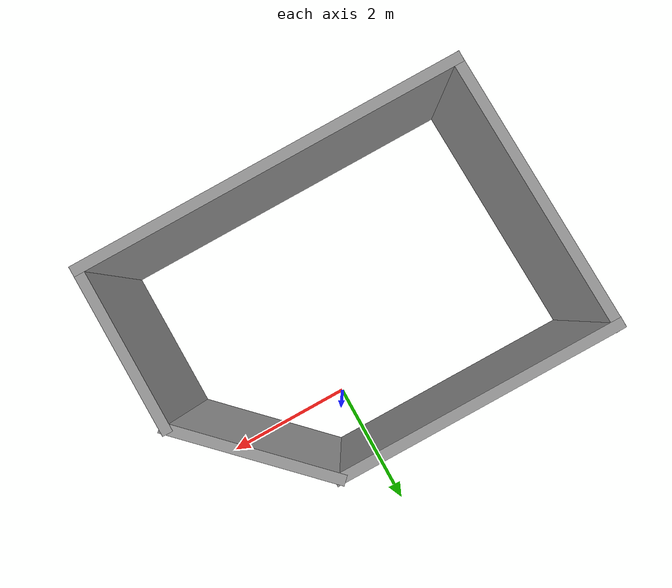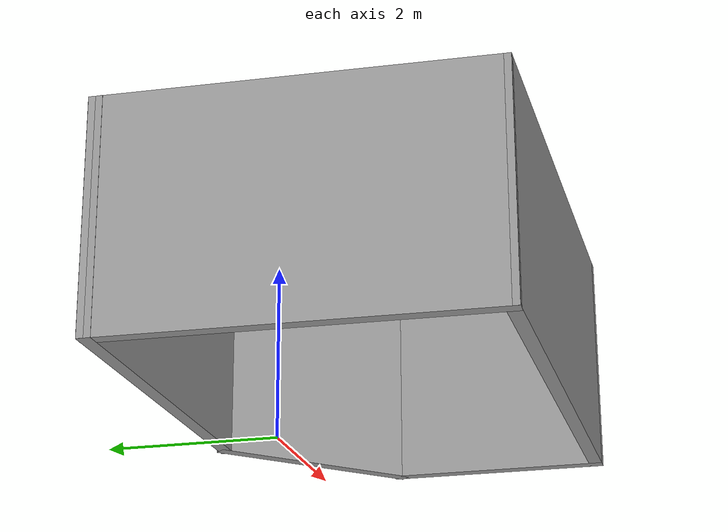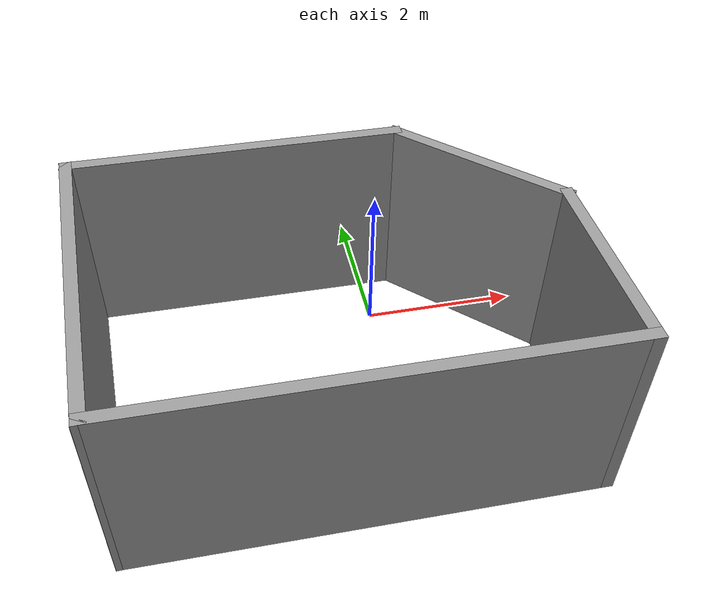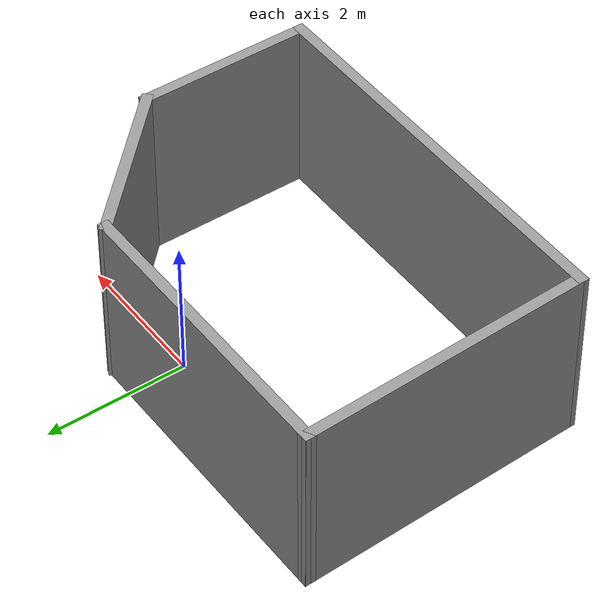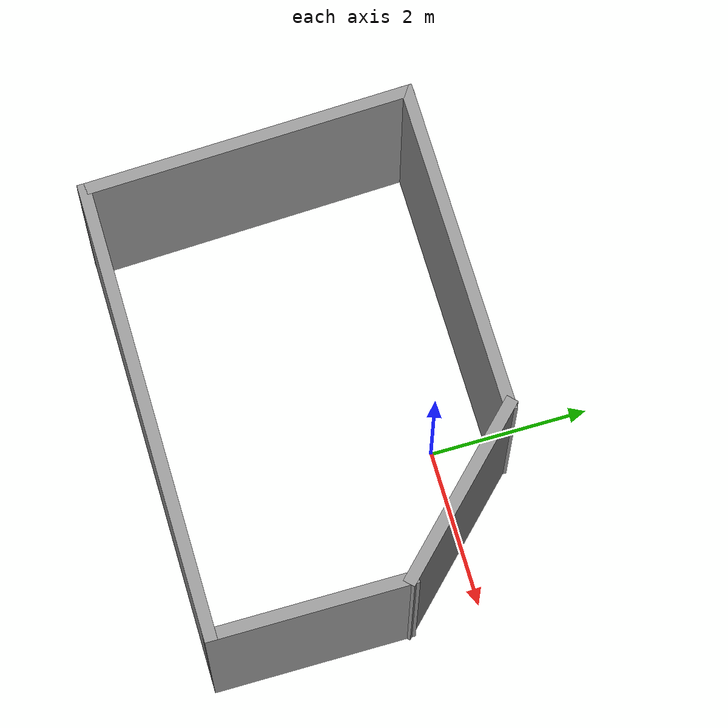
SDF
<?xml version='1.0'?>
<sdf version='1.7'>
  <model name='simple_room_1'>
    <pose>-0.786797 -1.2501 0 0 -0 0</pose>
    <link name='Wall_0'>
      <collision name='Wall_0_Collision'>
        <geometry>
          <box>
            <size>5.75 0.15 2.5</size>
          </box>
        </geometry>
        <pose>0 0 1.25 0 -0 0</pose>
      </collision>
      <visual name='Wall_0_Visual'>
        <pose>0 0 1.25 0 -0 0</pose>
        <geometry>
          <box>
            <size>5.75 0.15 2.5</size>
          </box>
        </geometry>
        <material>
          <script>
            <uri>file://media/materials/scripts/gazebo.material</uri>
            <name>Gazebo/Grey</name>
          </script>
          <ambient>1 1 1 1</ambient>
        </material>
        <meta>
          <layer>0</layer>
        </meta>
      </visual>
      <pose>0.066797 -2.0199 0 0 -0 0</pose>
    </link>
    <link name='Wall_1'>
      <collision name='Wall_1_Collision'>
        <geometry>
          <box>
            <size>2.5 0.15 2.5</size>
          </box>
        </geometry>
        <pose>0 0 1.25 0 -0 0</pose>
      </collision>
      <visual name='Wall_1_Visual'>
        <pose>0 0 1.25 0 -0 0</pose>
        <geometry>
          <box>
            <size>2.5 0.15 2.5</size>
          </box>
        </geometry>
        <material>
          <script>
            <uri>file://media/materials/scripts/gazebo.material</uri>
            <name>Gazebo/Grey</name>
          </script>
          <ambient>1 1 1 1</ambient>
        </material>
        <meta>
          <layer>0</layer>
        </meta>
      </visual>
      <pose>2.8668 -0.844904 0 0 -0 1.5708</pose>
    </link>
    <link name='Wall_4'>
      <collision name='Wall_4_Collision'>
        <geometry>
          <box>
            <size>2.5 0.15 2.5</size>
          </box>
        </geometry>
        <pose>0 0 1.25 0 -0 0</pose>
      </collision>
      <visual name='Wall_4_Visual'>
        <pose>0 0 1.25 0 -0 0</pose>
        <geometry>
          <box>
            <size>2.5 0.15 2.5</size>
          </box>
        </geometry>
        <material>
          <script>
            <uri>file://media/materials/scripts/gazebo.material</uri>
            <name>Gazebo/Grey</name>
          </script>
          <ambient>1 1 1 1</ambient>
        </material>
        <meta>
          <layer>0</layer>
        </meta>
      </visual>
      <pose>2.03595 1.16095 0 0 -0 2.35619</pose>
    </link>
    <link name='Wall_5'>
      <collision name='Wall_5_Collision'>
        <geometry>
          <box>
            <size>4.25 0.15 2.5</size>
          </box>
        </geometry>
        <pose>0 0 1.25 0 -0 0</pose>
      </collision>
      <visual name='Wall_5_Visual'>
        <pose>0 0 1.25 0 -0 0</pose>
        <geometry>
          <box>
            <size>4.25 0.15 2.5</size>
          </box>
        </geometry>
        <material>
          <script>
            <uri>file://media/materials/scripts/gazebo.material</uri>
            <name>Gazebo/Grey</name>
          </script>
          <ambient>1 1 1 1</ambient>
        </material>
        <meta>
          <layer>0</layer>
        </meta>
      </visual>
      <pose>-0.844904 1.9918 0 0 -0 3.14159</pose>
    </link>
    <link name='Wall_6'>
      <collision name='Wall_6_Collision'>
        <geometry>
          <box>
            <size>4.16496 0.15 2.5</size>
          </box>
        </geometry>
        <pose>0 0 1.25 0 -0 0</pose>
      </collision>
      <visual name='Wall_6_Visual'>
        <pose>0 0 1.25 0 -0 0</pose>
        <geometry>
          <box>
            <size>4.16496 0.15 2.5</size>
          </box>
        </geometry>
        <material>
          <script>
            <uri>file://media/materials/scripts/gazebo.material</uri>
            <name>Gazebo/Grey</name>
          </script>
          <ambient>1 1 1 1</ambient>
        </material>
        <meta>
          <layer>0</layer>
        </meta>
      </visual>
      <pose>-2.81405 -0.014053 0 0 -0 -1.53051</pose>
    </link>
    <static>1</static>
  </model>
</sdf>
